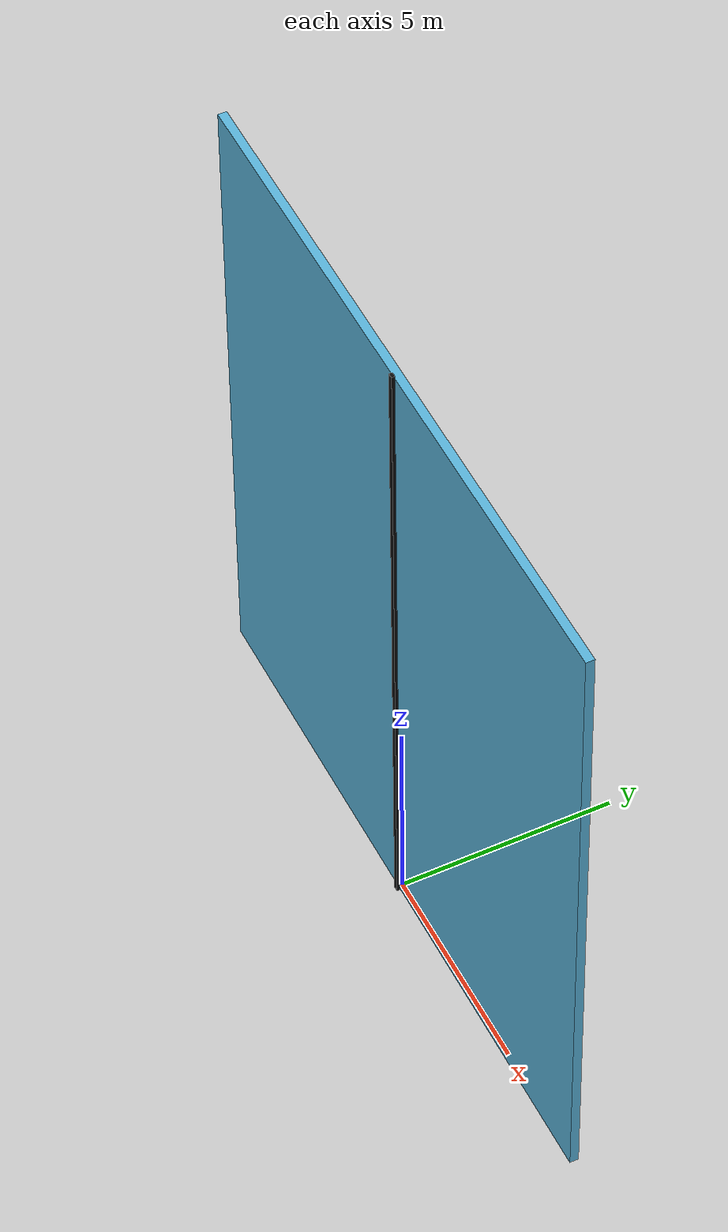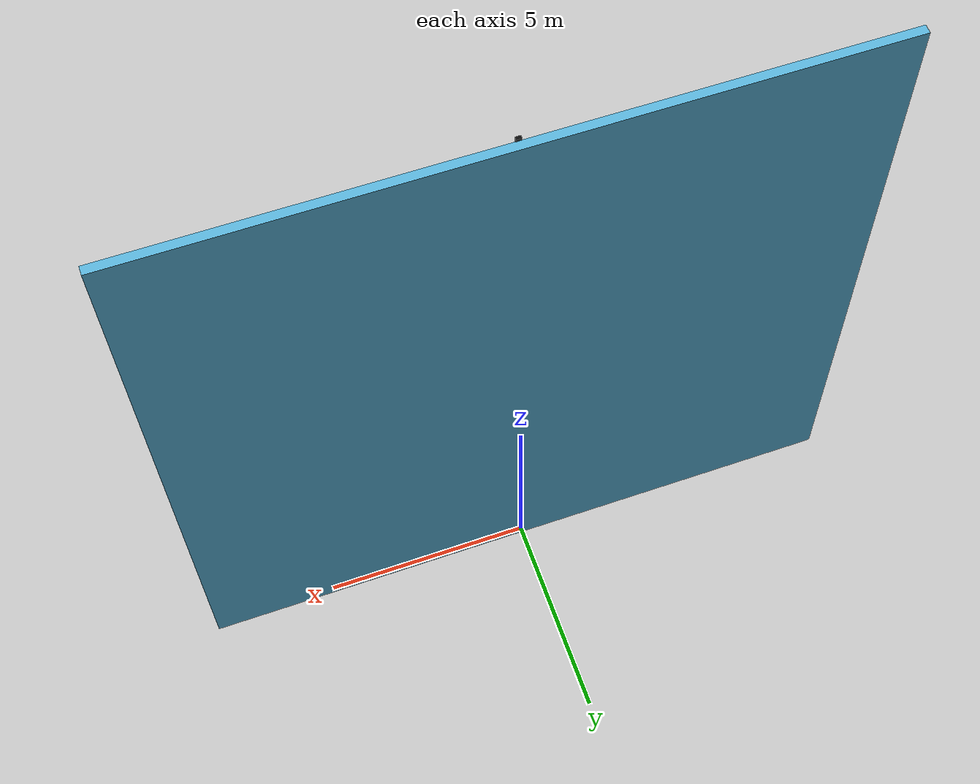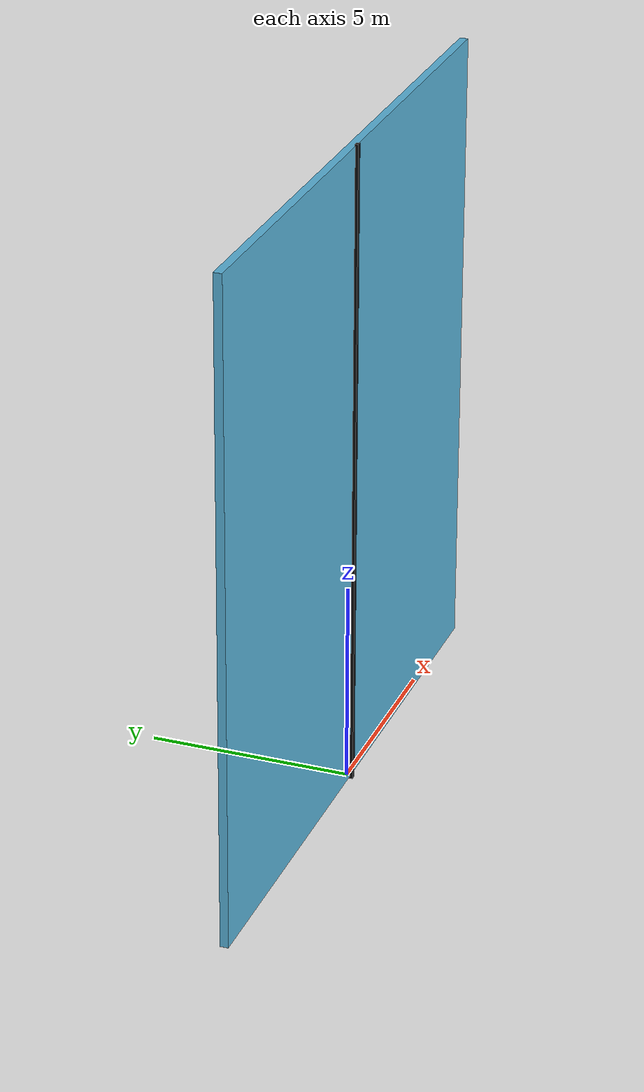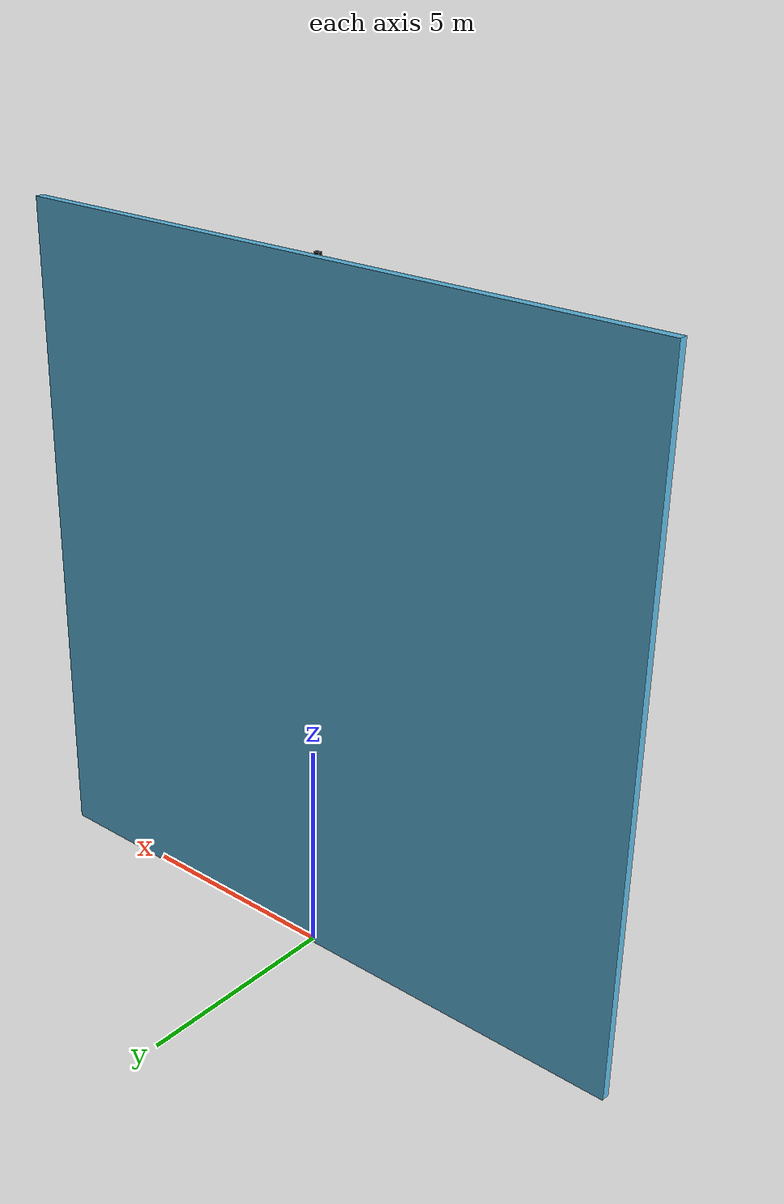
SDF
<?xml version="1.0" ?>
<sdf version="1.9">
  <world name="facade_cleaning_world">
    <gravity>0 0 -9.81</gravity>
    <scene>
      <ambient>0.6 0.6 0.6 1</ambient>
      <background>0.75 0.82 0.9 1</background>
    </scene>

    <model name="mock_skyscraper_facade">
      <static>true</static>
      <pose>0 0 8 0 0 0</pose>
      <link name="wall">
        <collision name="wall_collision">
          <geometry>
            <box>
              <size>16 0.2 16</size>
            </box>
          </geometry>
        </collision>
        <visual name="glass_wall_visual">
          <geometry>
            <box>
              <size>16 0.2 16</size>
            </box>
          </geometry>
          <material>
            <ambient>0.25 0.42 0.5 1</ambient>
            <diffuse>0.35 0.7 0.85 1</diffuse>
            <specular>0.8 0.8 0.8 1</specular>
          </material>
        </visual>
      </link>
    </model>

    <model name="window_frame_grid">
      <static>true</static>
      <pose>0 -0.13 8 0 0 0</pose>
      <link name="frames">
        <visual name="vertical_frame">
          <geometry>
            <box>
              <size>0.12 0.08 16.1</size>
            </box>
          </geometry>
          <material>
            <ambient>0.04 0.04 0.04 1</ambient>
            <diffuse>0.04 0.04 0.04 1</diffuse>
          </material>
        </visual>
      </link>
    </model>

    <wind>
      <linear_velocity>2 0 0</linear_velocity>
    </wind>
  </world>
</sdf>
